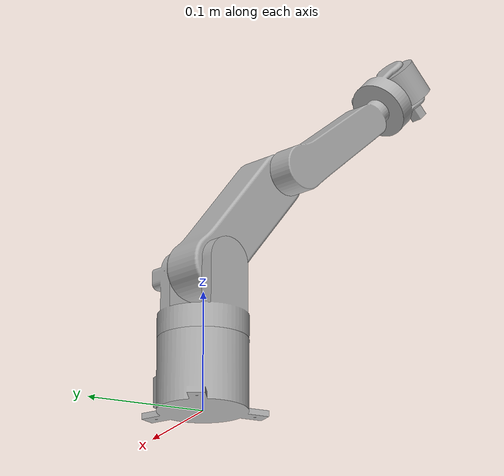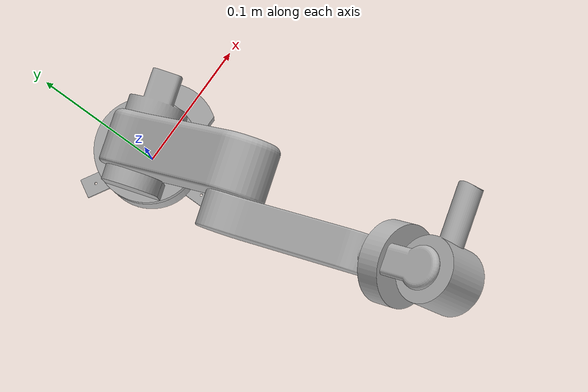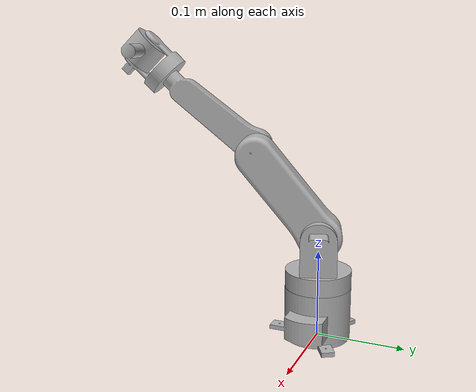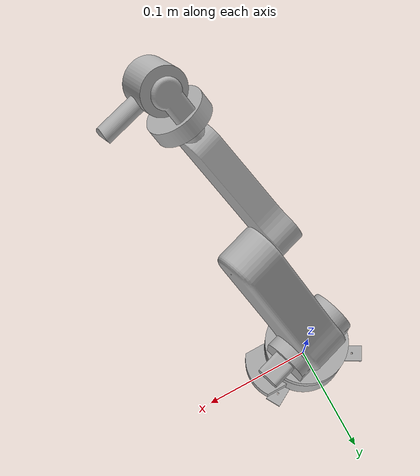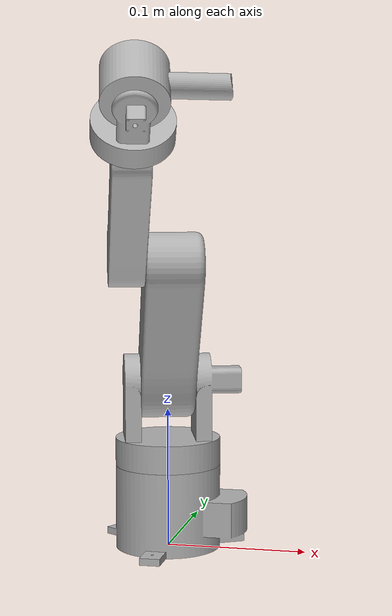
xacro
<?xml version="1.0" ?>
<robot name="robot_arm" xmlns:xacro="http://www.ros.org/wiki/xacro">

<xacro:include filename="$(find robot_arm_description)/urdf/materials.xacro" />
<xacro:include filename="$(find robot_arm_description)/urdf/robot_arm.trans" />
<xacro:include filename="$(find robot_arm_description)/urdf/robot_arm.gazebo" />
<link name="dummy"></link>
<link name="base_link">
  <inertial>
    <origin rpy="0 0 0" xyz="0.0035168152143238885 -1.666668598250173e-05 0.028012530522048572"/>
    <mass value="2.185751701331884"/>
    <inertia ixx="0.001335" ixy="1e-06" ixz="1.9e-05" iyy="0.001636" iyz="-0.0" izz="0.001824"/>
  </inertial>
  <visual>
    <origin rpy="0 0 0" xyz="0 0 0"/>
    <geometry>
      <mesh filename="package://robot_arm_description/meshes/base_link.stl" scale="0.001 0.001 0.001"/>
    </geometry>
    <material name="silver"/>
  </visual>
  <collision>
    <origin rpy="0 0 0" xyz="0 0 0"/>
    <geometry>
      <mesh filename="package://robot_arm_description/meshes/base_link.stl" scale="0.001 0.001 0.001"/>
    </geometry>
  </collision>
</link>

<link name="revolve_base_1">
  <inertial>
    <origin rpy="0 0 0" xyz="0.0017897130322263764 0.00042170936534176653 0.026773254955700786"/>
    <mass value="1.2509746408878526"/>
    <inertia ixx="0.001" ixy="-8.7e-05" ixz="-8.6e-05" iyy="0.001251" iyz="-2.2e-05" izz="0.000961"/>
  </inertial>
  <visual>
    <origin rpy="0 0 0" xyz="-0.0 -0.0 -0.057"/>
    <geometry>
      <mesh filename="package://robot_arm_description/meshes/revolve_base_1.stl" scale="0.001 0.001 0.001"/>
    </geometry>
    <material name="silver"/>
  </visual>
  <collision>
    <origin rpy="0 0 0" xyz="-0.0 -0.0 -0.057"/>
    <geometry>
      <mesh filename="package://robot_arm_description/meshes/revolve_base_1.stl" scale="0.001 0.001 0.001"/>
    </geometry>
  </collision>
</link>

<link name="wrist_1">
  <inertial>
    <origin rpy="0 0 0" xyz="0.003065372604041359 -0.009864308349769313 0.009328175760730806"/>
    <mass value="0.28923335599926986"/>
    <inertia ixx="0.000107" ixy="6e-06" ixz="2e-06" iyy="8.9e-05" iyz="-6e-06" izz="9.8e-05"/>
  </inertial>
  <visual>
    <origin rpy="0 0 0" xyz="-0.021049 0.172921 -0.291615"/>
    <geometry>
      <mesh filename="package://robot_arm_description/meshes/wrist_1.stl" scale="0.001 0.001 0.001"/>
    </geometry>
    <material name="silver"/>
  </visual>
  <collision>
    <origin rpy="0 0 0" xyz="-0.021049 0.172921 -0.291615"/>
    <geometry>
      <mesh filename="package://robot_arm_description/meshes/wrist_1.stl" scale="0.001 0.001 0.001"/>
    </geometry>
  </collision>
</link>

<link name="arm_1_1">
  <inertial>
    <origin rpy="0 0 0" xyz="0.009678350788639366 -0.031024087232192774 0.04217806875038599"/>
    <mass value="2.0651308300124485"/>
    <inertia ixx="0.004269" ixy="0.00044" ixz="-0.000552" iyy="0.003014" iyz="0.00175" izz="0.002047"/>
  </inertial>
  <visual>
    <origin rpy="0 0 0" xyz="0.00051 0.000511 -0.12"/>
    <geometry>
      <mesh filename="package://robot_arm_description/meshes/arm_1_1.stl" scale="0.001 0.001 0.001"/>
    </geometry>
    <material name="silver"/>
  </visual>
  <collision>
    <origin rpy="0 0 0" xyz="0.00051 0.000511 -0.12"/>
    <geometry>
      <mesh filename="package://robot_arm_description/meshes/arm_1_1.stl" scale="0.001 0.001 0.001"/>
    </geometry>
  </collision>
</link>

<link name="arm_2_1">
  <inertial>
    <origin rpy="0 0 0" xyz="-0.0001461436327167753 -0.03941528581653511 0.02811698241626634"/>
    <mass value="0.7899537328202426"/>
    <inertia ixx="0.001183" ixy="0.000209" ixz="-0.000163" iyy="0.000589" iyz="0.000517" izz="0.000801"/>
  </inertial>
  <visual>
    <origin rpy="0 0 0" xyz="-0.003105 0.076796 -0.214544"/>
    <geometry>
      <mesh filename="package://robot_arm_description/meshes/arm_2_1.stl" scale="0.001 0.001 0.001"/>
    </geometry>
    <material name="silver"/>
  </visual>
  <collision>
    <origin rpy="0 0 0" xyz="-0.003105 0.076796 -0.214544"/>
    <geometry>
      <mesh filename="package://robot_arm_description/meshes/arm_2_1.stl" scale="0.001 0.001 0.001"/>
    </geometry>
  </collision>
</link>

<link name="hand_mount_1">
  <inertial>
    <origin rpy="0 0 0" xyz="0.005052870434540755 0.0014531875127082317 -8.069353456929829e-05"/>
    <mass value="0.34294901678601714"/>
    <inertia ixx="5.8e-05" ixy="-1.7e-05" ixz="-0.0" iyy="0.000114" iyz="4e-06" izz="0.000118"/>
  </inertial>
  <visual>
    <origin rpy="0 0 0" xyz="-0.029678 0.200228 -0.32096"/>
    <geometry>
      <mesh filename="package://robot_arm_description/meshes/hand_mount_1.stl" scale="0.001 0.001 0.001"/>
    </geometry>
    <material name="silver"/>
  </visual>
  <collision>
    <origin rpy="0 0 0" xyz="-0.029678 0.200228 -0.32096"/>
    <geometry>
      <mesh filename="package://robot_arm_description/meshes/hand_mount_1.stl" scale="0.001 0.001 0.001"/>
    </geometry>
  </collision>
</link>

<joint name="dummy_joint" type="fixed">
  <parent link="dummy"/>
  <child link="base_link"/>
</joint>
<joint name="base_rev" type="continuous">
  <origin rpy="0 0 0" xyz="0.0 0.0 0.057"/>
  <parent link="base_link"/>
  <child link="revolve_base_1"/>
  <axis xyz="0.0 0.0 1.0"/>
</joint>

<joint name="Wrist_joint" type="continuous">
  <origin rpy="0 0 0" xyz="0.017944 -0.096125 0.077071"/>
  <parent link="arm_2_1"/>
  <child link="wrist_1"/>
  <axis xyz="-0.212709 0.674355 -0.707107"/>
</joint>

<joint name="Shoulder_joint" type="continuous">
  <origin rpy="0 0 0" xyz="-0.00051 -0.000511 0.063"/>
  <parent link="revolve_base_1"/>
  <child link="arm_1_1"/>
  <axis xyz="-0.953682 -0.300816 0.0"/>
</joint>

<joint name="Elbow_joint" type="continuous">
  <origin rpy="0 0 0" xyz="0.003615 -0.076285 0.094544"/>
  <parent link="arm_1_1"/>
  <child link="arm_2_1"/>
  <axis xyz="-0.953682 -0.300816 0.0"/>
</joint>

<joint name="Hand_rev" type="continuous">
  <origin rpy="0 0 0" xyz="0.008629 -0.027307 0.029345"/>
  <parent link="wrist_1"/>
  <child link="hand_mount_1"/>
  <axis xyz="0.184245 -0.683005 -0.706794"/>
</joint>

</robot>

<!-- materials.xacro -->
<robot name="robot_arm" xmlns:xacro="http://www.ros.org/wiki/xacro" >

<material name="silver">
  <color rgba="0.700 0.700 0.700 1.000"/>
</material>

</robot>

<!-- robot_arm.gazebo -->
<robot name="robot_arm" xmlns:xacro="http://www.ros.org/wiki/xacro" >

<xacro:property name="body_color" value="Gazebo/Silver" />

<gazebo>
  <plugin filename="libgazebo_ros_control.so" name="control"/>
</gazebo>
<gazebo reference="base_link">
  <material>${body_color}</material>
  <mu1>0.2</mu1>
  <mu2>0.2</mu2>
  <selfCollide>true</selfCollide>
  <gravity>true</gravity>
</gazebo>

<gazebo reference="revolve_base_1">
  <material>${body_color}</material>
  <mu1>0.2</mu1>
  <mu2>0.2</mu2>
  <selfCollide>true</selfCollide>
</gazebo>

<gazebo reference="wrist_1">
  <material>${body_color}</material>
  <mu1>0.2</mu1>
  <mu2>0.2</mu2>
  <selfCollide>true</selfCollide>
</gazebo>

<gazebo reference="arm_1_1">
  <material>${body_color}</material>
  <mu1>0.2</mu1>
  <mu2>0.2</mu2>
  <selfCollide>true</selfCollide>
</gazebo>

<gazebo reference="arm_2_1">
  <material>${body_color}</material>
  <mu1>0.2</mu1>
  <mu2>0.2</mu2>
  <selfCollide>true</selfCollide>
</gazebo>

<gazebo reference="hand_mount_1">
  <material>${body_color}</material>
  <mu1>0.2</mu1>
  <mu2>0.2</mu2>
  <selfCollide>true</selfCollide>
</gazebo>

</robot>
